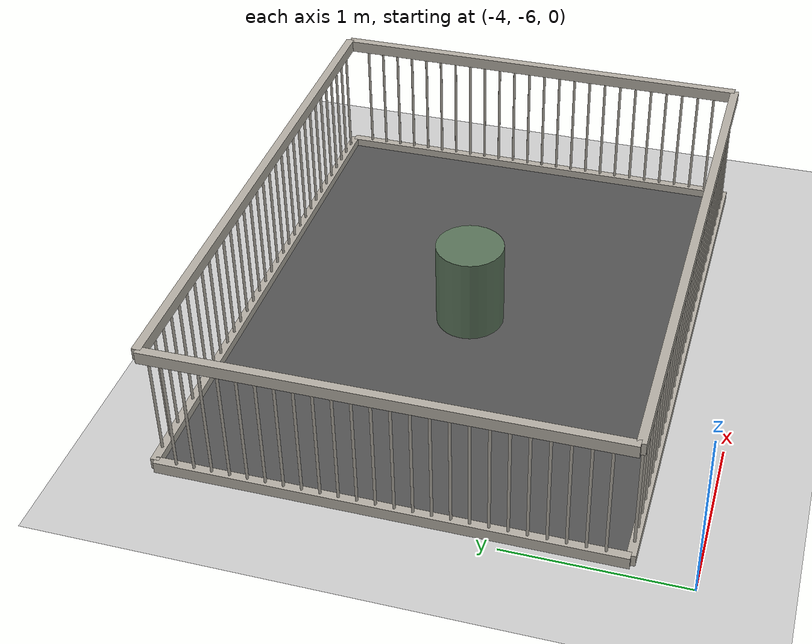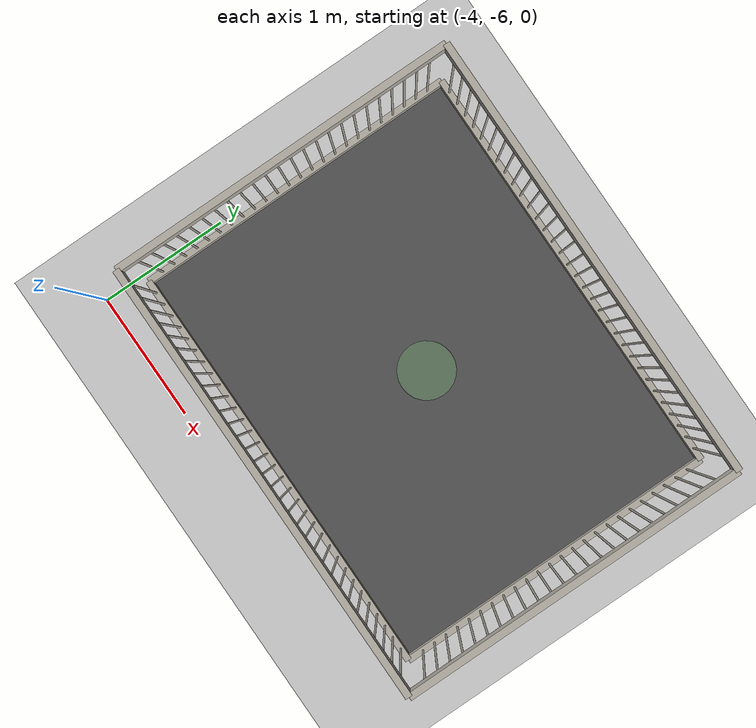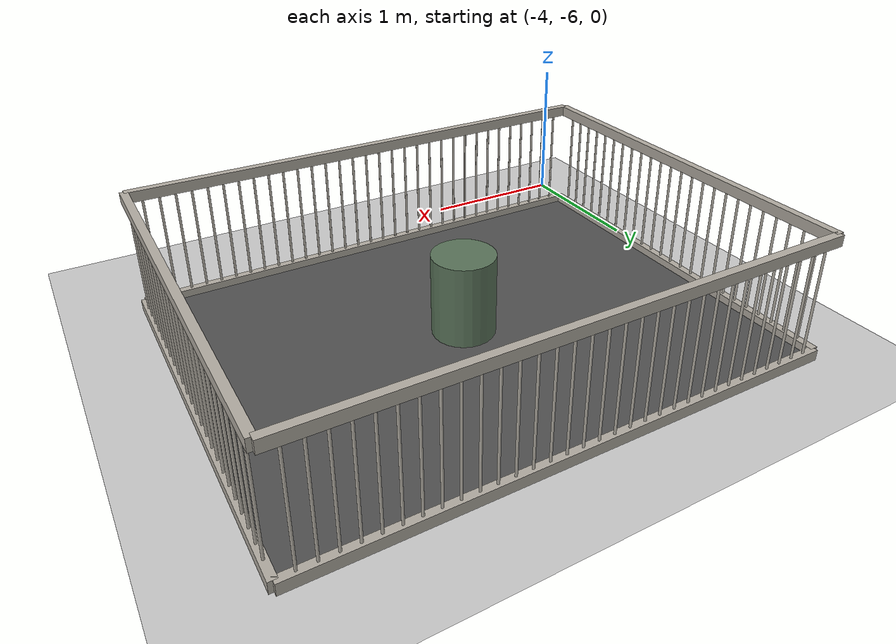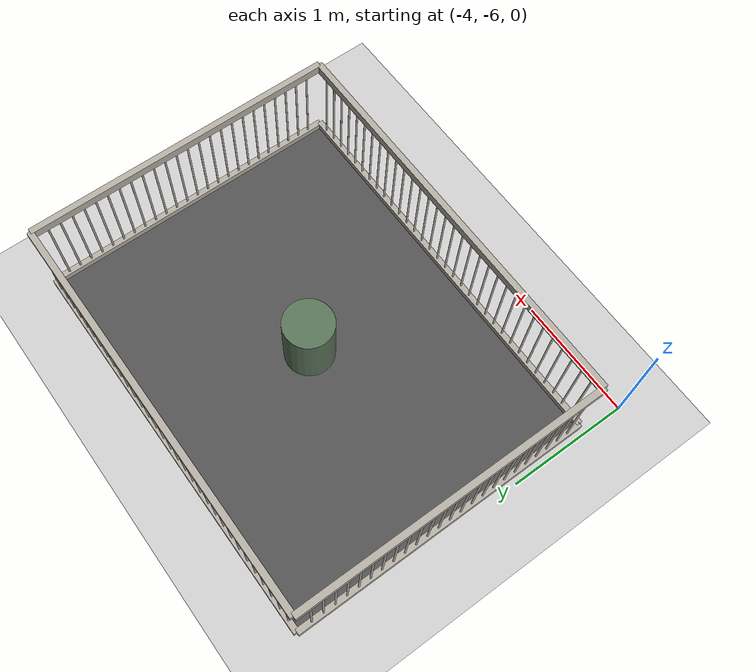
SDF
<sdf version="1.9">
 <world name="pig_pen_16units_world">
  <model name="ground_plane">
   <static>true</static>
   <link name="link">
    <collision name="collision">
     <geometry><plane><normal>0 0 1</normal><size>30 30</size></plane></geometry>
     <surface><friction><ode><mu>1.0</mu><mu2>1.0</mu2></ode></friction></surface>
    </collision>
    <visual name="visual">
     <geometry><plane><normal>0 0 1</normal><size>30 30</size></plane></geometry>
     <material>
      <ambient>0.8 0.8 0.8 1</ambient>
      <diffuse>0.8 0.8 0.8 1</diffuse>
      <specular>0.2 0.2 0.2 1</specular>
     </material>
    </visual>
   </link>
  </model>
  <model name="pen4">
   <pose>-2.275 -4.385 0 0 0 0</pose>
   <static>true</static>
   <link name="floor">
    <pose>0 0 0.01 0 0 0</pose>
    <collision name="collision"><geometry><box><size>3.30 2.55 0.02</size></box></geometry></collision>
    <visual name="visual">
     <geometry><box><size>3.30 2.55 0.02</size></box></geometry>
     <material>
      <ambient>0.25 0.25 0.25 1</ambient>
      <diffuse>0.32 0.32 0.32 1</diffuse>
      <specular>0.05 0.05 0.05 1</specular>
     </material>
    </visual>
   </link>
   <link name="left_wall">
    <pose>0 1.275 0.415 0 0 0</pose>
    <collision name="top_rail_col">
     <pose>0 0 0.38 0 0 0</pose>
     <geometry><box><size>3.30 0.05 0.07</size></box></geometry>
    </collision>
    <visual name="top_rail_vis">
     <pose>0 0 0.38 0 0 0</pose>
     <geometry><box><size>3.30 0.05 0.07</size></box></geometry>
     <material><ambient>0.70 0.68 0.64 1</ambient><diffuse>0.70 0.68 0.64 1</diffuse></material>
    </visual>
    <collision name="bottom_rail_col">
     <pose>0 0 -0.38 0 0 0</pose>
     <geometry><box><size>3.30 0.05 0.07</size></box></geometry>
    </collision>
    <visual name="bottom_rail_vis">
     <pose>0 0 -0.38 0 0 0</pose>
     <geometry><box><size>3.30 0.05 0.07</size></box></geometry>
     <material><ambient>0.70 0.68 0.64 1</ambient><diffuse>0.70 0.68 0.64 1</diffuse></material>
    </visual>
    <collision name="bar_01_col">
     <pose>-1.55 0 0 0 0 0</pose>
     <geometry><cylinder><radius>0.0075</radius><length>0.69</length></cylinder></geometry>
    </collision>
    <visual name="bar_01_vis">
     <pose>-1.55 0 0 0 0 0</pose>
     <geometry><cylinder><radius>0.0075</radius><length>0.69</length></cylinder></geometry>
     <material><ambient>0.70 0.68 0.64 1</ambient><diffuse>0.70 0.68 0.64 1</diffuse></material>
    </visual>
    <collision name="bar_02_col">
     <pose>-1.45 0 0 0 0 0</pose>
     <geometry><cylinder><radius>0.0075</radius><length>0.69</length></cylinder></geometry>
    </collision>
    <visual name="bar_02_vis">
     <pose>-1.45 0 0 0 0 0</pose>
     <geometry><cylinder><radius>0.0075</radius><length>0.69</length></cylinder></geometry>
     <material><ambient>0.70 0.68 0.64 1</ambient><diffuse>0.70 0.68 0.64 1</diffuse></material>
    </visual>
    <collision name="bar_03_col">
     <pose>-1.35 0 0 0 0 0</pose>
     <geometry><cylinder><radius>0.0075</radius><length>0.69</length></cylinder></geometry>
    </collision>
    <visual name="bar_03_vis">
     <pose>-1.35 0 0 0 0 0</pose>
     <geometry><cylinder><radius>0.0075</radius><length>0.69</length></cylinder></geometry>
     <material><ambient>0.70 0.68 0.64 1</ambient><diffuse>0.70 0.68 0.64 1</diffuse></material>
    </visual>
    <collision name="bar_04_col">
     <pose>-1.25 0 0 0 0 0</pose>
     <geometry><cylinder><radius>0.0075</radius><length>0.69</length></cylinder></geometry>
    </collision>
    <visual name="bar_04_vis">
     <pose>-1.25 0 0 0 0 0</pose>
     <geometry><cylinder><radius>0.0075</radius><length>0.69</length></cylinder></geometry>
     <material><ambient>0.70 0.68 0.64 1</ambient><diffuse>0.70 0.68 0.64 1</diffuse></material>
    </visual>
    <collision name="bar_05_col">
     <pose>-1.15 0 0 0 0 0</pose>
     <geometry><cylinder><radius>0.0075</radius><length>0.69</length></cylinder></geometry>
    </collision>
    <visual name="bar_05_vis">
     <pose>-1.15 0 0 0 0 0</pose>
     <geometry><cylinder><radius>0.0075</radius><length>0.69</length></cylinder></geometry>
     <material><ambient>0.70 0.68 0.64 1</ambient><diffuse>0.70 0.68 0.64 1</diffuse></material>
    </visual>
    <collision name="bar_06_col">
     <pose>-1.05 0 0 0 0 0</pose>
     <geometry><cylinder><radius>0.0075</radius><length>0.69</length></cylinder></geometry>
    </collision>
    <visual name="bar_06_vis">
     <pose>-1.05 0 0 0 0 0</pose>
     <geometry><cylinder><radius>0.0075</radius><length>0.69</length></cylinder></geometry>
     <material><ambient>0.70 0.68 0.64 1</ambient><diffuse>0.70 0.68 0.64 1</diffuse></material>
    </visual>
    <collision name="bar_07_col">
     <pose>-0.95 0 0 0 0 0</pose>
     <geometry><cylinder><radius>0.0075</radius><length>0.69</length></cylinder></geometry>
    </collision>
    <visual name="bar_07_vis">
     <pose>-0.95 0 0 0 0 0</pose>
     <geometry><cylinder><radius>0.0075</radius><length>0.69</length></cylinder></geometry>
     <material><ambient>0.70 0.68 0.64 1</ambient><diffuse>0.70 0.68 0.64 1</diffuse></material>
    </visual>
    <collision name="bar_08_col">
     <pose>-0.85 0 0 0 0 0</pose>
     <geometry><cylinder><radius>0.0075</radius><length>0.69</length></cylinder></geometry>
    </collision>
    <visual name="bar_08_vis">
     <pose>-0.85 0 0 0 0 0</pose>
     <geometry><cylinder><radius>0.0075</radius><length>0.69</length></cylinder></geometry>
     <material><ambient>0.70 0.68 0.64 1</ambient><diffuse>0.70 0.68 0.64 1</diffuse></material>
    </visual>
    <collision name="bar_09_col">
     <pose>-0.75 0 0 0 0 0</pose>
     <geometry><cylinder><radius>0.0075</radius><length>0.69</length></cylinder></geometry>
    </collision>
    <visual name="bar_09_vis">
     <pose>-0.75 0 0 0 0 0</pose>
     <geometry><cylinder><radius>0.0075</radius><length>0.69</length></cylinder></geometry>
     <material><ambient>0.70 0.68 0.64 1</ambient><diffuse>0.70 0.68 0.64 1</diffuse></material>
    </visual>
    <collision name="bar_10_col">
     <pose>-0.65 0 0 0 0 0</pose>
     <geometry><cylinder><radius>0.0075</radius><length>0.69</length></cylinder></geometry>
    </collision>
    <visual name="bar_10_vis">
     <pose>-0.65 0 0 0 0 0</pose>
     <geometry><cylinder><radius>0.0075</radius><length>0.69</length></cylinder></geometry>
     <material><ambient>0.70 0.68 0.64 1</ambient><diffuse>0.70 0.68 0.64 1</diffuse></material>
    </visual>
    <collision name="bar_11_col">
     <pose>-0.55 0 0 0 0 0</pose>
     <geometry><cylinder><radius>0.0075</radius><length>0.69</length></cylinder></geometry>
    </collision>
    <visual name="bar_11_vis">
     <pose>-0.55 0 0 0 0 0</pose>
     <geometry><cylinder><radius>0.0075</radius><length>0.69</length></cylinder></geometry>
     <material><ambient>0.70 0.68 0.64 1</ambient><diffuse>0.70 0.68 0.64 1</diffuse></material>
    </visual>
    <collision name="bar_12_col">
     <pose>-0.45 0 0 0 0 0</pose>
     <geometry><cylinder><radius>0.0075</radius><length>0.69</length></cylinder></geometry>
    </collision>
    <visual name="bar_12_vis">
     <pose>-0.45 0 0 0 0 0</pose>
     <geometry><cylinder><radius>0.0075</radius><length>0.69</length></cylinder></geometry>
     <material><ambient>0.70 0.68 0.64 1</ambient><diffuse>0.70 0.68 0.64 1</diffuse></material>
    </visual>
    <collision name="bar_13_col">
     <pose>-0.35 0 0 0 0 0</pose>
     <geometry><cylinder><radius>0.0075</radius><length>0.69</length></cylinder></geometry>
    </collision>
    <visual name="bar_13_vis">
     <pose>-0.35 0 0 0 0 0</pose>
     <geometry><cylinder><radius>0.0075</radius><length>0.69</length></cylinder></geometry>
     <material><ambient>0.70 0.68 0.64 1</ambient><diffuse>0.70 0.68 0.64 1</diffuse></material>
    </visual>
    <collision name="bar_14_col">
     <pose>-0.25 0 0 0 0 0</pose>
     <geometry><cylinder><radius>0.0075</radius><length>0.69</length></cylinder></geometry>
    </collision>
    <visual name="bar_14_vis">
     <pose>-0.25 0 0 0 0 0</pose>
     <geometry><cylinder><radius>0.0075</radius><length>0.69</length></cylinder></geometry>
     <material><ambient>0.70 0.68 0.64 1</ambient><diffuse>0.70 0.68 0.64 1</diffuse></material>
    </visual>
    <collision name="bar_15_col">
     <pose>-0.15 0 0 0 0 0</pose>
     <geometry><cylinder><radius>0.0075</radius><length>0.69</length></cylinder></geometry>
    </collision>
    <visual name="bar_15_vis">
     <pose>-0.15 0 0 0 0 0</pose>
     <geometry><cylinder><radius>0.0075</radius><length>0.69</length></cylinder></geometry>
     <material><ambient>0.70 0.68 0.64 1</ambient><diffuse>0.70 0.68 0.64 1</diffuse></material>
    </visual>
    <collision name="bar_16_col">
     <pose>-0.05 0 0 0 0 0</pose>
     <geometry><cylinder><radius>0.0075</radius><length>0.69</length></cylinder></geometry>
    </collision>
    <visual name="bar_16_vis">
     <pose>-0.05 0 0 0 0 0</pose>
     <geometry><cylinder><radius>0.0075</radius><length>0.69</length></cylinder></geometry>
     <material><ambient>0.70 0.68 0.64 1</ambient><diffuse>0.70 0.68 0.64 1</diffuse></material>
    </visual>
    <collision name="bar_17_col">
     <pose>0.05 0 0 0 0 0</pose>
     <geometry><cylinder><radius>0.0075</radius><length>0.69</length></cylinder></geometry>
    </collision>
    <visual name="bar_17_vis">
     <pose>0.05 0 0 0 0 0</pose>
     <geometry><cylinder><radius>0.0075</radius><length>0.69</length></cylinder></geometry>
     <material><ambient>0.70 0.68 0.64 1</ambient><diffuse>0.70 0.68 0.64 1</diffuse></material>
    </visual>
    <collision name="bar_18_col">
     <pose>0.15 0 0 0 0 0</pose>
     <geometry><cylinder><radius>0.0075</radius><length>0.69</length></cylinder></geometry>
    </collision>
    <visual name="bar_18_vis">
     <pose>0.15 0 0 0 0 0</pose>
     <geometry><cylinder><radius>0.0075</radius><length>0.69</length></cylinder></geometry>
     <material><ambient>0.70 0.68 0.64 1</ambient><diffuse>0.70 0.68 0.64 1</diffuse></material>
    </visual>
    <collision name="bar_19_col">
     <pose>0.25 0 0 0 0 0</pose>
     <geometry><cylinder><radius>0.0075</radius><length>0.69</length></cylinder></geometry>
    </collision>
    <visual name="bar_19_vis">
     <pose>0.25 0 0 0 0 0</pose>
     <geometry><cylinder><radius>0.0075</radius><length>0.69</length></cylinder></geometry>
     <material><ambient>0.70 0.68 0.64 1</ambient><diffuse>0.70 0.68 0.64 1</diffuse></material>
    </visual>
    <collision name="bar_20_col">
     <pose>0.35 0 0 0 0 0</pose>
     <geometry><cylinder><radius>0.0075</radius><length>0.69</length></cylinder></geometry>
    </collision>
    <visual name="bar_20_vis">
     <pose>0.35 0 0 0 0 0</pose>
     <geometry><cylinder><radius>0.0075</radius><length>0.69</length></cylinder></geometry>
     <material><ambient>0.70 0.68 0.64 1</ambient><diffuse>0.70 0.68 0.64 1</diffuse></material>
    </visual>
    <collision name="bar_21_col">
     <pose>0.45 0 0 0 0 0</pose>
     <geometry><cylinder><radius>0.0075</radius><length>0.69</length></cylinder></geometry>
    </collision>
    <visual name="bar_21_vis">
     <pose>0.45 0 0 0 0 0</pose>
     <geometry><cylinder><radius>0.0075</radius><length>0.69</length></cylinder></geometry>
     <material><ambient>0.70 0.68 0.64 1</ambient><diffuse>0.70 0.68 0.64 1</diffuse></material>
    </visual>
    <collision name="bar_22_col">
     <pose>0.55 0 0 0 0 0</pose>
     <geometry><cylinder><radius>0.0075</radius><length>0.69</length></cylinder></geometry>
    </collision>
    <visual name="bar_22_vis">
     <pose>0.55 0 0 0 0 0</pose>
     <geometry><cylinder><radius>0.0075</radius><length>0.69</length></cylinder></geometry>
     <material><ambient>0.70 0.68 0.64 1</ambient><diffuse>0.70 0.68 0.64 1</diffuse></material>
    </visual>
    <collision name="bar_23_col">
     <pose>0.65 0 0 0 0 0</pose>
     <geometry><cylinder><radius>0.0075</radius><length>0.69</length></cylinder></geometry>
    </collision>
    <visual name="bar_23_vis">
     <pose>0.65 0 0 0 0 0</pose>
     <geometry><cylinder><radius>0.0075</radius><length>0.69</length></cylinder></geometry>
     <material><ambient>0.70 0.68 0.64 1</ambient><diffuse>0.70 0.68 0.64 1</diffuse></material>
    </visual>
    <collision name="bar_24_col">
     <pose>0.75 0 0 0 0 0</pose>
     <geometry><cylinder><radius>0.0075</radius><length>0.69</length></cylinder></geometry>
    </collision>
    <visual name="bar_24_vis">
     <pose>0.75 0 0 0 0 0</pose>
     <geometry><cylinder><radius>0.0075</radius><length>0.69</length></cylinder></geometry>
     <material><ambient>0.70 0.68 0.64 1</ambient><diffuse>0.70 0.68 0.64 1</diffuse></material>
    </visual>
    <collision name="bar_25_col">
     <pose>0.85 0 0 0 0 0</pose>
     <geometry><cylinder><radius>0.0075</radius><length>0.69</length></cylinder></geometry>
    </collision>
    <visual name="bar_25_vis">
     <pose>0.85 0 0 0 0 0</pose>
     <geometry><cylinder><radius>0.0075</radius><length>0.69</length></cylinder></geometry>
     <material><ambient>0.70 0.68 0.64 1</ambient><diffuse>0.70 0.68 0.64 1</diffuse></material>
    </visual>
    <collision name="bar_26_col">
     <pose>0.95 0 0 0 0 0</pose>
     <geometry><cylinder><radius>0.0075</radius><length>0.69</length></cylinder></geometry>
    </collision>
    <visual name="bar_26_vis">
     <pose>0.95 0 0 0 0 0</pose>
     <geometry><cylinder><radius>0.0075</radius><length>0.69</length></cylinder></geometry>
     <material><ambient>0.70 0.68 0.64 1</ambient><diffuse>0.70 0.68 0.64 1</diffuse></material>
    </visual>
    <collision name="bar_27_col">
     <pose>1.05 0 0 0 0 0</pose>
     <geometry><cylinder><radius>0.0075</radius><length>0.69</length></cylinder></geometry>
    </collision>
    <visual name="bar_27_vis">
     <pose>1.05 0 0 0 0 0</pose>
     <geometry><cylinder><radius>0.0075</radius><length>0.69</length></cylinder></geometry>
     <material><ambient>0.70 0.68 0.64 1</ambient><diffuse>0.70 0.68 0.64 1</diffuse></material>
    </visual>
    <collision name="bar_28_col">
     <pose>1.15 0 0 0 0 0</pose>
     <geometry><cylinder><radius>0.0075</radius><length>0.69</length></cylinder></geometry>
    </collision>
    <visual name="bar_28_vis">
     <pose>1.15 0 0 0 0 0</pose>
     <geometry><cylinder><radius>0.0075</radius><length>0.69</length></cylinder></geometry>
     <material><ambient>0.70 0.68 0.64 1</ambient><diffuse>0.70 0.68 0.64 1</diffuse></material>
    </visual>
    <collision name="bar_29_col">
     <pose>1.25 0 0 0 0 0</pose>
     <geometry><cylinder><radius>0.0075</radius><length>0.69</length></cylinder></geometry>
    </collision>
    <visual name="bar_29_vis">
     <pose>1.25 0 0 0 0 0</pose>
     <geometry><cylinder><radius>0.0075</radius><length>0.69</length></cylinder></geometry>
     <material><ambient>0.70 0.68 0.64 1</ambient><diffuse>0.70 0.68 0.64 1</diffuse></material>
    </visual>
    <collision name="bar_30_col">
     <pose>1.35 0 0 0 0 0</pose>
     <geometry><cylinder><radius>0.0075</radius><length>0.69</length></cylinder></geometry>
    </collision>
    <visual name="bar_30_vis">
     <pose>1.35 0 0 0 0 0</pose>
     <geometry><cylinder><radius>0.0075</radius><length>0.69</length></cylinder></geometry>
     <material><ambient>0.70 0.68 0.64 1</ambient><diffuse>0.70 0.68 0.64 1</diffuse></material>
    </visual>
    <collision name="bar_31_col">
     <pose>1.45 0 0 0 0 0</pose>
     <geometry><cylinder><radius>0.0075</radius><length>0.69</length></cylinder></geometry>
    </collision>
    <visual name="bar_31_vis">
     <pose>1.45 0 0 0 0 0</pose>
     <geometry><cylinder><radius>0.0075</radius><length>0.69</length></cylinder></geometry>
     <material><ambient>0.70 0.68 0.64 1</ambient><diffuse>0.70 0.68 0.64 1</diffuse></material>
    </visual>
    <collision name="bar_32_col">
     <pose>1.55 0 0 0 0 0</pose>
     <geometry><cylinder><radius>0.0075</radius><length>0.69</length></cylinder></geometry>
    </collision>
    <visual name="bar_32_vis">
     <pose>1.55 0 0 0 0 0</pose>
     <geometry><cylinder><radius>0.0075</radius><length>0.69</length></cylinder></geometry>
     <material><ambient>0.70 0.68 0.64 1</ambient><diffuse>0.70 0.68 0.64 1</diffuse></material>
    </visual>
   </link>
   <link name="right_wall">
    <pose>0 -1.275 0.415 0 0 0</pose>
    <collision name="top_rail_col">
     <pose>0 0 0.38 0 0 0</pose>
     <geometry><box><size>3.30 0.05 0.07</size></box></geometry>
    </collision>
    <visual name="top_rail_vis">
     <pose>0 0 0.38 0 0 0</pose>
     <geometry><box><size>3.30 0.05 0.07</size></box></geometry>
     <material><ambient>0.70 0.68 0.64 1</ambient><diffuse>0.70 0.68 0.64 1</diffuse></material>
    </visual>
    <collision name="bottom_rail_col">
     <pose>0 0 -0.38 0 0 0</pose>
     <geometry><box><size>3.30 0.05 0.07</size></box></geometry>
    </collision>
    <visual name="bottom_rail_vis">
     <pose>0 0 -0.38 0 0 0</pose>
     <geometry><box><size>3.30 0.05 0.07</size></box></geometry>
     <material><ambient>0.70 0.68 0.64 1</ambient><diffuse>0.70 0.68 0.64 1</diffuse></material>
    </visual>
    <collision name="bar_01_col">
     <pose>-1.55 0 0 0 0 0</pose>
     <geometry><cylinder><radius>0.0075</radius><length>0.69</length></cylinder></geometry>
    </collision>
    <visual name="bar_01_vis">
     <pose>-1.55 0 0 0 0 0</pose>
     <geometry><cylinder><radius>0.0075</radius><length>0.69</length></cylinder></geometry>
     <material><ambient>0.70 0.68 0.64 1</ambient><diffuse>0.70 0.68 0.64 1</diffuse></material>
    </visual>
    <collision name="bar_02_col">
     <pose>-1.45 0 0 0 0 0</pose>
     <geometry><cylinder><radius>0.0075</radius><length>0.69</length></cylinder></geometry>
    </collision>
    <visual name="bar_02_vis">
     <pose>-1.45 0 0 0 0 0</pose>
     <geometry><cylinder><radius>0.0075</radius><length>0.69</length></cylinder></geometry>
     <material><ambient>0.70 0.68 0.64 1</ambient><diffuse>0.70 0.68 0.64 1</diffuse></material>
    </visual>
    <collision name="bar_03_col">
     <pose>-1.35 0 0 0 0 0</pose>
     <geometry><cylinder><radius>0.0075</radius><length>0.69</length></cylinder></geometry>
    </collision>
    <visual name="bar_03_vis">
     <pose>-1.35 0 0 0 0 0</pose>
     <geometry><cylinder><radius>0.0075</radius><length>0.69</length></cylinder></geometry>
     <material><ambient>0.70 0.68 0.64 1</ambient><diffuse>0.70 0.68 0.64 1</diffuse></material>
    </visual>
    <collision name="bar_04_col">
     <pose>-1.25 0 0 0 0 0</pose>
     <geometry><cylinder><radius>0.0075</radius><length>0.69</length></cylinder></geometry>
    </collision>
    <visual name="bar_04_vis">
     <pose>-1.25 0 0 0 0 0</pose>
     <geometry><cylinder><radius>0.0075</radius><length>0.69</length></cylinder></geometry>
     <material><ambient>0.70 0.68 0.64 1</ambient><diffuse>0.70 0.68 0.64 1</diffuse></material>
    </visual>
    <collision name="bar_05_col">
     <pose>-1.15 0 0 0 0 0</pose>
     <geometry><cylinder><radius>0.0075</radius><length>0.69</length></cylinder></geometry>
    </collision>
    <visual name="bar_05_vis">
     <pose>-1.15 0 0 0 0 0</pose>
     <geometry><cylinder><radius>0.0075</radius><length>0.69</length></cylinder></geometry>
     <material><ambient>0.70 0.68 0.64 1</ambient><diffuse>0.70 0.68 0.64 1</diffuse></material>
    </visual>
    <collision name="bar_06_col">
     <pose>-1.05 0 0 0 0 0</pose>
     <geometry><cylinder><radius>0.0075</radius><length>0.69</length></cylinder></geometry>
    </collision>
    <visual name="bar_06_vis">
     <pose>-1.05 0 0 0 0 0</pose>
     <geometry><cylinder><radius>0.0075</radius><length>0.69</length></cylinder></geometry>
     <material><ambient>0.70 0.68 0.64 1</ambient><diffuse>0.70 0.68 0.64 1</diffuse></material>
    </visual>
    <collision name="bar_07_col">
     <pose>-0.95 0 0 0 0 0</pose>
     <geometry><cylinder><radius>0.0075</radius><length>0.69</length></cylinder></geometry>
    </collision>
    <visual name="bar_07_vis">
     <pose>-0.95 0 0 0 0 0</pose>
     <geometry><cylinder><radius>0.0075</radius><length>0.69</length></cylinder></geometry>
     <material><ambient>0.70 0.68 0.64 1</ambient><diffuse>0.70 0.68 0.64 1</diffuse></material>
    </visual>
    <collision name="bar_08_col">
     <pose>-0.85 0 0 0 0 0</pose>
     <geometry><cylinder><radius>0.0075</radius><length>0.69</length></cylinder></geometry>
    </collision>
    <visual name="bar_08_vis">
     <pose>-0.85 0 0 0 0 0</pose>
     <geometry><cylinder><radius>0.0075</radius><length>0.69</length></cylinder></geometry>
     <material><ambient>0.70 0.68 0.64 1</ambient><diffuse>0.70 0.68 0.64 1</diffuse></material>
    </visual>
    <collision name="bar_09_col">
     <pose>-0.75 0 0 0 0 0</pose>
     <geometry><cylinder><radius>0.0075</radius><length>0.69</length></cylinder></geometry>
    </collision>
    <visual name="bar_09_vis">
     <pose>-0.75 0 0 0 0 0</pose>
     <geometry><cylinder><radius>0.0075</radius><length>0.69</length></cylinder></geometry>
     <material><ambient>0.70 0.68 0.64 1</ambient><diffuse>0.70 0.68 0.64 1</diffuse></material>
    </visual>
    <collision name="bar_10_col">
     <pose>-0.65 0 0 0 0 0</pose>
     <geometry><cylinder><radius>0.0075</radius><length>0.69</length></cylinder></geometry>
    </collision>
    <visual name="bar_10_vis">
     <pose>-0.65 0 0 0 0 0</pose>
     <geometry><cylinder><radius>0.0075</radius><length>0.69</length></cylinder></geometry>
     <material><ambient>0.70 0.68 0.64 1</ambient><diffuse>0.70 0.68 0.64 1</diffuse></material>
    </visual>
    <collision name="bar_11_col">
     <pose>-0.55 0 0 0 0 0</pose>
     <geometry><cylinder><radius>0.0075</radius><length>0.69</length></cylinder></geometry>
    </collision>
    <visual name="bar_11_vis">
     <pose>-0.55 0 0 0 0 0</pose>
     <geometry><cylinder><radius>0.0075</radius><length>0.69</length></cylinder></geometry>
     <material><ambient>0.70 0.68 0.64 1</ambient><diffuse>0.70 0.68 0.64 1</diffuse></material>
    </visual>
    <collision name="bar_12_col">
     <pose>-0.45 0 0 0 0 0</pose>
     <geometry><cylinder><radius>0.0075</radius><length>0.69</length></cylinder></geometry>
    </collision>
    <visual name="bar_12_vis">
     <pose>-0.45 0 0 0 0 0</pose>
     <geometry><cylinder><radius>0.0075</radius><length>0.69</length></cylinder></geometry>
     <material><ambient>0.70 0.68 0.64 1</ambient><diffuse>0.70 0.68 0.64 1</diffuse></material>
    </visual>
    <collision name="bar_13_col">
     <pose>-0.35 0 0 0 0 0</pose>
     <geometry><cylinder><radius>0.0075</radius><length>0.69</length></cylinder></geometry>
    </collision>
    <visual name="bar_13_vis">
     <pose>-0.35 0 0 0 0 0</pose>
     <geometry><cylinder><radius>0.0075</radius><length>0.69</length></cylinder></geometry>
     <material><ambient>0.70 0.68 0.64 1</ambient><diffuse>0.70 0.68 0.64 1</diffuse></material>
    </visual>
    <collision name="bar_14_col">
     <pose>-0.25 0 0 0 0 0</pose>
     <geometry><cylinder><radius>0.0075</radius><length>0.69</length></cylinder></geometry>
    </collision>
    <visual name="bar_14_vis">
     <pose>-0.25 0 0 0 0 0</pose>
     <geometry><cylinder><radius>0.0075</radius><length>0.69</length></cylinder></geometry>
     <material><ambient>0.70 0.68 0.64 1</ambient><diffuse>0.70 0.68 0.64 1</diffuse></material>
    </visual>
    <collision name="bar_15_col">
     <pose>-0.15 0 0 0 0 0</pose>
     <geometry><cylinder><radius>0.0075</radius><length>0.69</length></cylinder></geometry>
    </collision>
    <visual name="bar_15_vis">
     <pose>-0.15 0 0 0 0 0</pose>
     <geometry><cylinder><radius>0.0075</radius><length>0.69</length></cylinder></geometry>
     <material><ambient>0.70 0.68 0.64 1</ambient><diffuse>0.70 0.68 0.64 1</diffuse></material>
    </visual>
    <collision name="bar_16_col">
     <pose>-0.05 0 0 0 0 0</pose>
     <geometry><cylinder><radius>0.0075</radius><length>0.69</length></cylinder></geometry>
    </collision>
    <visual name="bar_16_vis">
     <pose>-0.05 0 0 0 0 0</pose>
     <geometry><cylinder><radius>0.0075</radius><length>0.69</length></cylinder></geometry>
     <material><ambient>0.70 0.68 0.64 1</ambient><diffuse>0.70 0.68 0.64 1</diffuse></material>
    </visual>
    <collision name="bar_17_col">
     <pose>0.05 0 0 0 0 0</pose>
     <geometry><cylinder><radius>0.0075</radius><length>0.69</length></cylinder></geometry>
    </collision>
    <visual name="bar_17_vis">
     <pose>0.05 0 0 0 0 0</pose>
     <geometry><cylinder><radius>0.0075</radius><length>0.69</length></cylinder></geometry>
     <material><ambient>0.70 0.68 0.64 1</ambient><diffuse>0.70 0.68 0.64 1</diffuse></material>
    </visual>
    <collision name="bar_18_col">
     <pose>0.15 0 0 0 0 0</pose>
     <geometry><cylinder><radius>0.0075</radius><length>0.69</length></cylinder></geometry>
    </collision>
    <visual name="bar_18_vis">
     <pose>0.15 0 0 0 0 0</pose>
     <geometry><cylinder><radius>0.0075</radius><length>0.69</length></cylinder></geometry>
     <material><ambient>0.70 0.68 0.64 1</ambient><diffuse>0.70 0.68 0.64 1</diffuse></material>
    </visual>
    <collision name="bar_19_col">
     <pose>0.25 0 0 0 0 0</pose>
     <geometry><cylinder><radius>0.0075</radius><length>0.69</length></cylinder></geometry>
    </collision>
    <visual name="bar_19_vis">
     <pose>0.25 0 0 0 0 0</pose>
     <geometry><cylinder><radius>0.0075</radius><length>0.69</length></cylinder></geometry>
     <material><ambient>0.70 0.68 0.64 1</ambient><diffuse>0.70 0.68 0.64 1</diffuse></material>
    </visual>
    <collision name="bar_20_col">
     <pose>0.35 0 0 0 0 0</pose>
     <geometry><cylinder><radius>0.0075</radius><length>0.69</length></cylinder></geometry>
    </collision>
    <visual name="bar_20_vis">
     <pose>0.35 0 0 0 0 0</pose>
     <geometry><cylinder><radius>0.0075</radius><length>0.69</length></cylinder></geometry>
     <material><ambient>0.70 0.68 0.64 1</ambient><diffuse>0.70 0.68 0.64 1</diffuse></material>
    </visual>
    <collision name="bar_21_col">
     <pose>0.45 0 0 0 0 0</pose>
     <geometry><cylinder><radius>0.0075</radius><length>0.69</length></cylinder></geometry>
    </collision>
    <visual name="bar_21_vis">
     <pose>0.45 0 0 0 0 0</pose>
     <geometry><cylinder><radius>0.0075</radius><length>0.69</length></cylinder></geometry>
     <material><ambient>0.70 0.68 0.64 1</ambient><diffuse>0.70 0.68 0.64 1</diffuse></material>
    </visual>
    <collision name="bar_22_col">
     <pose>0.55 0 0 0 0 0</pose>
     <geometry><cylinder><radius>0.0075</radius><length>0.69</length></cylinder></geometry>
    </collision>
    <visual name="bar_22_vis">
     <pose>0.55 0 0 0 0 0</pose>
     <geometry><cylinder><radius>0.0075</radius><length>0.69</length></cylinder></geometry>
     <material><ambient>0.70 0.68 0.64 1</ambient><diffuse>0.70 0.68 0.64 1</diffuse></material>
    </visual>
    <collision name="bar_23_col">
     <pose>0.65 0 0 0 0 0</pose>
     <geometry><cylinder><radius>0.0075</radius><length>0.69</length></cylinder></geometry>
    </collision>
    <visual name="bar_23_vis">
     <pose>0.65 0 0 0 0 0</pose>
     <geometry><cylinder><radius>0.0075</radius><length>0.69</length></cylinder></geometry>
     <material><ambient>0.70 0.68 0.64 1</ambient><diffuse>0.70 0.68 0.64 1</diffuse></material>
    </visual>
    <collision name="bar_24_col">
     <pose>0.75 0 0 0 0 0</pose>
     <geometry><cylinder><radius>0.0075</radius><length>0.69</length></cylinder></geometry>
    </collision>
    <visual name="bar_24_vis">
     <pose>0.75 0 0 0 0 0</pose>
     <geometry><cylinder><radius>0.0075</radius><length>0.69</length></cylinder></geometry>
     <material><ambient>0.70 0.68 0.64 1</ambient><diffuse>0.70 0.68 0.64 1</diffuse></material>
    </visual>
    <collision name="bar_25_col">
     <pose>0.85 0 0 0 0 0</pose>
     <geometry><cylinder><radius>0.0075</radius><length>0.69</length></cylinder></geometry>
    </collision>
    <visual name="bar_25_vis">
     <pose>0.85 0 0 0 0 0</pose>
     <geometry><cylinder><radius>0.0075</radius><length>0.69</length></cylinder></geometry>
     <material><ambient>0.70 0.68 0.64 1</ambient><diffuse>0.70 0.68 0.64 1</diffuse></material>
    </visual>
    <collision name="bar_26_col">
     <pose>0.95 0 0 0 0 0</pose>
     <geometry><cylinder><radius>0.0075</radius><length>0.69</length></cylinder></geometry>
    </collision>
    <visual name="bar_26_vis">
     <pose>0.95 0 0 0 0 0</pose>
     <geometry><cylinder><radius>0.0075</radius><length>0.69</length></cylinder></geometry>
     <material><ambient>0.70 0.68 0.64 1</ambient><diffuse>0.70 0.68 0.64 1</diffuse></material>
    </visual>
    <collision name="bar_27_col">
     <pose>1.05 0 0 0 0 0</pose>
     <geometry><cylinder><radius>0.0075</radius><length>0.69</length></cylinder></geometry>
    </collision>
    <visual name="bar_27_vis">
     <pose>1.05 0 0 0 0 0</pose>
     <geometry><cylinder><radius>0.0075</radius><length>0.69</length></cylinder></geometry>
     <material><ambient>0.70 0.68 0.64 1</ambient><diffuse>0.70 0.68 0.64 1</diffuse></material>
    </visual>
    <collision name="bar_28_col">
     <pose>1.15 0 0 0 0 0</pose>
     <geometry><cylinder><radius>0.0075</radius><length>0.69</length></cylinder></geometry>
    </collision>
    <visual name="bar_28_vis">
     <pose>1.15 0 0 0 0 0</pose>
     <geometry><cylinder><radius>0.0075</radius><length>0.69</length></cylinder></geometry>
     <material><ambient>0.70 0.68 0.64 1</ambient><diffuse>0.70 0.68 0.64 1</diffuse></material>
    </visual>
    <collision name="bar_29_col">
     <pose>1.25 0 0 0 0 0</pose>
     <geometry><cylinder><radius>0.0075</radius><length>0.69</length></cylinder></geometry>
    </collision>
    <visual name="bar_29_vis">
     <pose>1.25 0 0 0 0 0</pose>
     <geometry><cylinder><radius>0.0075</radius><length>0.69</length></cylinder></geometry>
     <material><ambient>0.70 0.68 0.64 1</ambient><diffuse>0.70 0.68 0.64 1</diffuse></material>
    </visual>
    <collision name="bar_30_col">
     <pose>1.35 0 0 0 0 0</pose>
     <geometry><cylinder><radius>0.0075</radius><length>0.69</length></cylinder></geometry>
    </collision>
    <visual name="bar_30_vis">
     <pose>1.35 0 0 0 0 0</pose>
     <geometry><cylinder><radius>0.0075</radius><length>0.69</length></cylinder></geometry>
     <material><ambient>0.70 0.68 0.64 1</ambient><diffuse>0.70 0.68 0.64 1</diffuse></material>
    </visual>
    <collision name="bar_31_col">
     <pose>1.45 0 0 0 0 0</pose>
     <geometry><cylinder><radius>0.0075</radius><length>0.69</length></cylinder></geometry>
    </collision>
    <visual name="bar_31_vis">
     <pose>1.45 0 0 0 0 0</pose>
     <geometry><cylinder><radius>0.0075</radius><length>0.69</length></cylinder></geometry>
     <material><ambient>0.70 0.68 0.64 1</ambient><diffuse>0.70 0.68 0.64 1</diffuse></material>
    </visual>
    <collision name="bar_32_col">
     <pose>1.55 0 0 0 0 0</pose>
     <geometry><cylinder><radius>0.0075</radius><length>0.69</length></cylinder></geometry>
    </collision>
    <visual name="bar_32_vis">
     <pose>1.55 0 0 0 0 0</pose>
     <geometry><cylinder><radius>0.0075</radius><length>0.69</length></cylinder></geometry>
     <material><ambient>0.70 0.68 0.64 1</ambient><diffuse>0.70 0.68 0.64 1</diffuse></material>
    </visual>
   </link>
   <link name="back_wall">
    <pose>1.65 0 0.415 0 0 0</pose>
    <collision name="top_rail_col">
     <pose>0 0 0.38 0 0 0</pose>
     <geometry><box><size>0.05 2.55 0.07</size></box></geometry>
    </collision>
    <visual name="top_rail_vis">
     <pose>0 0 0.38 0 0 0</pose>
     <geometry><box><size>0.05 2.55 0.07</size></box></geometry>
     <material><ambient>0.70 0.68 0.64 1</ambient><diffuse>0.70 0.68 0.64 1</diffuse></material>
    </visual>
    <collision name="bottom_rail_col">
     <pose>0 0 -0.38 0 0 0</pose>
     <geometry><box><size>0.05 2.55 0.07</size></box></geometry>
    </collision>
    <visual name="bottom_rail_vis">
     <pose>0 0 -0.38 0 0 0</pose>
     <geometry><box><size>0.05 2.55 0.07</size></box></geometry>
     <material><ambient>0.70 0.68 0.64 1</ambient><diffuse>0.70 0.68 0.64 1</diffuse></material>
    </visual>
    <collision name="bar_01_col">
     <pose>0 -1.15 0 0 0 0</pose>
     <geometry><cylinder><radius>0.0075</radius><length>0.69</length></cylinder></geometry>
    </collision>
    <visual name="bar_01_vis">
     <pose>0 -1.15 0 0 0 0</pose>
     <geometry><cylinder><radius>0.0075</radius><length>0.69</length></cylinder></geometry>
     <material><ambient>0.70 0.68 0.64 1</ambient><diffuse>0.70 0.68 0.64 1</diffuse></material>
    </visual>
    <collision name="bar_02_col">
     <pose>0 -1.05 0 0 0 0</pose>
     <geometry><cylinder><radius>0.0075</radius><length>0.69</length></cylinder></geometry>
    </collision>
    <visual name="bar_02_vis">
     <pose>0 -1.05 0 0 0 0</pose>
     <geometry><cylinder><radius>0.0075</radius><length>0.69</length></cylinder></geometry>
     <material><ambient>0.70 0.68 0.64 1</ambient><diffuse>0.70 0.68 0.64 1</diffuse></material>
    </visual>
    <collision name="bar_03_col">
     <pose>0 -0.95 0 0 0 0</pose>
     <geometry><cylinder><radius>0.0075</radius><length>0.69</length></cylinder></geometry>
    </collision>
    <visual name="bar_03_vis">
     <pose>0 -0.95 0 0 0 0</pose>
     <geometry><cylinder><radius>0.0075</radius><length>0.69</length></cylinder></geometry>
     <material><ambient>0.70 0.68 0.64 1</ambient><diffuse>0.70 0.68 0.64 1</diffuse></material>
    </visual>
    <collision name="bar_04_col">
     <pose>0 -0.85 0 0 0 0</pose>
     <geometry><cylinder><radius>0.0075</radius><length>0.69</length></cylinder></geometry>
    </collision>
    <visual name="bar_04_vis">
     <pose>0 -0.85 0 0 0 0</pose>
     <geometry><cylinder><radius>0.0075</radius><length>0.69</length></cylinder></geometry>
     <material><ambient>0.70 0.68 0.64 1</ambient><diffuse>0.70 0.68 0.64 1</diffuse></material>
    </visual>
    <collision name="bar_05_col">
     <pose>0 -0.75 0 0 0 0</pose>
     <geometry><cylinder><radius>0.0075</radius><length>0.69</length></cylinder></geometry>
    </collision>
    <visual name="bar_05_vis">
     <pose>0 -0.75 0 0 0 0</pose>
     <geometry><cylinder><radius>0.0075</radius><length>0.69</length></cylinder></geometry>
     <material><ambient>0.70 0.68 0.64 1</ambient><diffuse>0.70 0.68 0.64 1</diffuse></material>
    </visual>
    <collision name="bar_06_col">
     <pose>0 -0.65 0 0 0 0</pose>
     <geometry><cylinder><radius>0.0075</radius><length>0.69</length></cylinder></geometry>
    </collision>
    <visual name="bar_06_vis">
     <pose>0 -0.65 0 0 0 0</pose>
     <geometry><cylinder><radius>0.0075</radius><length>0.69</length></cylinder></geometry>
     <material><ambient>0.70 0.68 0.64 1</ambient><diffuse>0.70 0.68 0.64 1</diffuse></material>
    </visual>
    <collision name="bar_07_col">
     <pose>0 -0.55 0 0 0 0</pose>
     <geometry><cylinder><radius>0.0075</radius><length>0.69</length></cylinder></geometry>
    </collision>
    <visual name="bar_07_vis">
     <pose>0 -0.55 0 0 0 0</pose>
     <geometry><cylinder><radius>0.0075</radius><length>0.69</length></cylinder></geometry>
     <material><ambient>0.70 0.68 0.64 1</ambient><diffuse>0.70 0.68 0.64 1</diffuse></material>
    </visual>
    <collision name="bar_08_col">
     <pose>0 -0.45 0 0 0 0</pose>
     <geometry><cylinder><radius>0.0075</radius><length>0.69</length></cylinder></geometry>
    </collision>
    <visual name="bar_08_vis">
     <pose>0 -0.45 0 0 0 0</pose>
     <geometry><cylinder><radius>0.0075</radius><length>0.69</length></cylinder></geometry>
     <material><ambient>0.70 0.68 0.64 1</ambient><diffuse>0.70 0.68 0.64 1</diffuse></material>
    </visual>
    <collision name="bar_09_col">
     <pose>0 -0.35 0 0 0 0</pose>
     <geometry><cylinder><radius>0.0075</radius><length>0.69</length></cylinder></geometry>
    </collision>
    <visual name="bar_09_vis">
     <pose>0 -0.35 0 0 0 0</pose>
     <geometry><cylinder><radius>0.0075</radius><length>0.69</length></cylinder></geometry>
     <material><ambient>0.70 0.68 0.64 1</ambient><diffuse>0.70 0.68 0.64 1</diffuse></material>
    </visual>
    <collision name="bar_10_col">
     <pose>0 -0.25 0 0 0 0</pose>
     <geometry><cylinder><radius>0.0075</radius><length>0.69</length></cylinder></geometry>
    </collision>
    <visual name="bar_10_vis">
     <pose>0 -0.25 0 0 0 0</pose>
     <geometry><cylinder><radius>0.0075</radius><length>0.69</length></cylinder></geometry>
     <material><ambient>0.70 0.68 0.64 1</ambient><diffuse>0.70 0.68 0.64 1</diffuse></material>
    </visual>
    <collision name="bar_11_col">
     <pose>0 -0.15 0 0 0 0</pose>
     <geometry><cylinder><radius>0.0075</radius><length>0.69</length></cylinder></geometry>
    </collision>
    <visual name="bar_11_vis">
     <pose>0 -0.15 0 0 0 0</pose>
     <geometry><cylinder><radius>0.0075</radius><length>0.69</length></cylinder></geometry>
     <material><ambient>0.70 0.68 0.64 1</ambient><diffuse>0.70 0.68 0.64 1</diffuse></material>
    </visual>
    <collision name="bar_12_col">
     <pose>0 -0.05 0 0 0 0</pose>
     <geometry><cylinder><radius>0.0075</radius><length>0.69</length></cylinder></geometry>
    </collision>
    <visual name="bar_12_vis">
     <pose>0 -0.05 0 0 0 0</pose>
     <geometry><cylinder><radius>0.0075</radius><length>0.69</length></cylinder></geometry>
     <material><ambient>0.70 0.68 0.64 1</ambient><diffuse>0.70 0.68 0.64 1</diffuse></material>
    </visual>
    <collision name="bar_13_col">
     <pose>0 0.05 0 0 0 0</pose>
     <geometry><cylinder><radius>0.0075</radius><length>0.69</length></cylinder></geometry>
    </collision>
    <visual name="bar_13_vis">
     <pose>0 0.05 0 0 0 0</pose>
     <geometry><cylinder><radius>0.0075</radius><length>0.69</length></cylinder></geometry>
     <material><ambient>0.70 0.68 0.64 1</ambient><diffuse>0.70 0.68 0.64 1</diffuse></material>
    </visual>
    <collision name="bar_14_col">
     <pose>0 0.15 0 0 0 0</pose>
     <geometry><cylinder><radius>0.0075</radius><length>0.69</length></cylinder></geometry>
    </collision>
    <visual name="bar_14_vis">
     <pose>0 0.15 0 0 0 0</pose>
     <geometry><cylinder><radius>0.0075</radius><length>0.69</length></cylinder></geometry>
     <material><ambient>0.70 0.68 0.64 1</ambient><diffuse>0.70 0.68 0.64 1</diffuse></material>
    </visual>
    <collision name="bar_15_col">
     <pose>0 0.25 0 0 0 0</pose>
     <geometry><cylinder><radius>0.0075</radius><length>0.69</length></cylinder></geometry>
    </collision>
    <visual name="bar_15_vis">
     <pose>0 0.25 0 0 0 0</pose>
     <geometry><cylinder><radius>0.0075</radius><length>0.69</length></cylinder></geometry>
     <material><ambient>0.70 0.68 0.64 1</ambient><diffuse>0.70 0.68 0.64 1</diffuse></material>
    </visual>
    <collision name="bar_16_col">
     <pose>0 0.35 0 0 0 0</pose>
     <geometry><cylinder><radius>0.0075</radius><length>0.69</length></cylinder></geometry>
    </collision>
    <visual name="bar_16_vis">
     <pose>0 0.35 0 0 0 0</pose>
     <geometry><cylinder><radius>0.0075</radius><length>0.69</length></cylinder></geometry>
     <material><ambient>0.70 0.68 0.64 1</ambient><diffuse>0.70 0.68 0.64 1</diffuse></material>
    </visual>
    <collision name="bar_17_col">
     <pose>0 0.45 0 0 0 0</pose>
     <geometry><cylinder><radius>0.0075</radius><length>0.69</length></cylinder></geometry>
    </collision>
    <visual name="bar_17_vis">
     <pose>0 0.45 0 0 0 0</pose>
     <geometry><cylinder><radius>0.0075</radius><length>0.69</length></cylinder></geometry>
     <material><ambient>0.70 0.68 0.64 1</ambient><diffuse>0.70 0.68 0.64 1</diffuse></material>
    </visual>
    <collision name="bar_18_col">
     <pose>0 0.55 0 0 0 0</pose>
     <geometry><cylinder><radius>0.0075</radius><length>0.69</length></cylinder></geometry>
    </collision>
    <visual name="bar_18_vis">
     <pose>0 0.55 0 0 0 0</pose>
     <geometry><cylinder><radius>0.0075</radius><length>0.69</length></cylinder></geometry>
     <material><ambient>0.70 0.68 0.64 1</ambient><diffuse>0.70 0.68 0.64 1</diffuse></material>
    </visual>
    <collision name="bar_19_col">
     <pose>0 0.65 0 0 0 0</pose>
     <geometry><cylinder><radius>0.0075</radius><length>0.69</length></cylinder></geometry>
    </collision>
    <visual name="bar_19_vis">
     <pose>0 0.65 0 0 0 0</pose>
     <geometry><cylinder><radius>0.0075</radius><length>0.69</length></cylinder></geometry>
     <material><ambient>0.70 0.68 0.64 1</ambient><diffuse>0.70 0.68 0.64 1</diffuse></material>
    </visual>
    <collision name="bar_20_col">
     <pose>0 0.75 0 0 0 0</pose>
     <geometry><cylinder><radius>0.0075</radius><length>0.69</length></cylinder></geometry>
    </collision>
    <visual name="bar_20_vis">
     <pose>0 0.75 0 0 0 0</pose>
     <geometry><cylinder><radius>0.0075</radius><length>0.69</length></cylinder></geometry>
     <material><ambient>0.70 0.68 0.64 1</ambient><diffuse>0.70 0.68 0.64 1</diffuse></material>
    </visual>
    <collision name="bar_21_col">
     <pose>0 0.85 0 0 0 0</pose>
     <geometry><cylinder><radius>0.0075</radius><length>0.69</length></cylinder></geometry>
    </collision>
    <visual name="bar_21_vis">
     <pose>0 0.85 0 0 0 0</pose>
     <geometry><cylinder><radius>0.0075</radius><length>0.69</length></cylinder></geometry>
     <material><ambient>0.70 0.68 0.64 1</ambient><diffuse>0.70 0.68 0.64 1</diffuse></material>
    </visual>
    <collision name="bar_22_col">
     <pose>0 0.95 0 0 0 0</pose>
     <geometry><cylinder><radius>0.0075</radius><length>0.69</length></cylinder></geometry>
    </collision>
    <visual name="bar_22_vis">
     <pose>0 0.95 0 0 0 0</pose>
     <geometry><cylinder><radius>0.0075</radius><length>0.69</length></cylinder></geometry>
     <material><ambient>0.70 0.68 0.64 1</ambient><diffuse>0.70 0.68 0.64 1</diffuse></material>
    </visual>
    <collision name="bar_23_col">
     <pose>0 1.05 0 0 0 0</pose>
     <geometry><cylinder><radius>0.0075</radius><length>0.69</length></cylinder></geometry>
    </collision>
    <visual name="bar_23_vis">
     <pose>0 1.05 0 0 0 0</pose>
     <geometry><cylinder><radius>0.0075</radius><length>0.69</length></cylinder></geometry>
     <material><ambient>0.70 0.68 0.64 1</ambient><diffuse>0.70 0.68 0.64 1</diffuse></material>
    </visual>
    <collision name="bar_24_col">
     <pose>0 1.15 0 0 0 0</pose>
     <geometry><cylinder><radius>0.0075</radius><length>0.69</length></cylinder></geometry>
    </collision>
    <visual name="bar_24_vis">
     <pose>0 1.15 0 0 0 0</pose>
     <geometry><cylinder><radius>0.0075</radius><length>0.69</length></cylinder></geometry>
     <material><ambient>0.70 0.68 0.64 1</ambient><diffuse>0.70 0.68 0.64 1</diffuse></material>
    </visual>
   </link>
   <link name="front_wall">
    <pose>-1.65 0 0.415 0 0 0</pose>
    <collision name="top_rail_col">
     <pose>0 0 0.38 0 0 0</pose>
     <geometry><box><size>0.05 2.55 0.07</size></box></geometry>
    </collision>
    <visual name="top_rail_vis">
     <pose>0 0 0.38 0 0 0</pose>
     <geometry><box><size>0.05 2.55 0.07</size></box></geometry>
     <material><ambient>0.70 0.68 0.64 1</ambient><diffuse>0.70 0.68 0.64 1</diffuse></material>
    </visual>
    <collision name="bottom_rail_col">
     <pose>0 0 -0.38 0 0 0</pose>
     <geometry><box><size>0.05 2.55 0.07</size></box></geometry>
    </collision>
    <visual name="bottom_rail_vis">
     <pose>0 0 -0.38 0 0 0</pose>
     <geometry><box><size>0.05 2.55 0.07</size></box></geometry>
     <material><ambient>0.70 0.68 0.64 1</ambient><diffuse>0.70 0.68 0.64 1</diffuse></material>
    </visual>
    <collision name="bar_01_col">
     <pose>0 -1.15 0 0 0 0</pose>
     <geometry><cylinder><radius>0.0075</radius><length>0.69</length></cylinder></geometry>
    </collision>
    <visual name="bar_01_vis">
     <pose>0 -1.15 0 0 0 0</pose>
     <geometry><cylinder><radius>0.0075</radius><length>0.69</length></cylinder></geometry>
     <material><ambient>0.70 0.68 0.64 1</ambient><diffuse>0.70 0.68 0.64 1</diffuse></material>
    </visual>
    <collision name="bar_02_col">
     <pose>0 -1.05 0 0 0 0</pose>
     <geometry><cylinder><radius>0.0075</radius><length>0.69</length></cylinder></geometry>
    </collision>
    <visual name="bar_02_vis">
     <pose>0 -1.05 0 0 0 0</pose>
     <geometry><cylinder><radius>0.0075</radius><length>0.69</length></cylinder></geometry>
     <material><ambient>0.70 0.68 0.64 1</ambient><diffuse>0.70 0.68 0.64 1</diffuse></material>
    </visual>
    <collision name="bar_03_col">
     <pose>0 -0.95 0 0 0 0</pose>
     <geometry><cylinder><radius>0.0075</radius><length>0.69</length></cylinder></geometry>
    </collision>
    <visual name="bar_03_vis">
     <pose>0 -0.95 0 0 0 0</pose>
     <geometry><cylinder><radius>0.0075</radius><length>0.69</length></cylinder></geometry>
     <material><ambient>0.70 0.68 0.64 1</ambient><diffuse>0.70 0.68 0.64 1</diffuse></material>
    </visual>
    <collision name="bar_04_col">
     <pose>0 -0.85 0 0 0 0</pose>
     <geometry><cylinder><radius>0.0075</radius><length>0.69</length></cylinder></geometry>
    </collision>
    <visual name="bar_04_vis">
     <pose>0 -0.85 0 0 0 0</pose>
     <geometry><cylinder><radius>0.0075</radius><length>0.69</length></cylinder></geometry>
     <material><ambient>0.70 0.68 0.64 1</ambient><diffuse>0.70 0.68 0.64 1</diffuse></material>
    </visual>
    <collision name="bar_05_col">
     <pose>0 -0.75 0 0 0 0</pose>
     <geometry><cylinder><radius>0.0075</radius><length>0.69</length></cylinder></geometry>
    </collision>
    <visual name="bar_05_vis">
     <pose>0 -0.75 0 0 0 0</pose>
     <geometry><cylinder><radius>0.0075</radius><length>0.69</length></cylinder></geometry>
     <material><ambient>0.70 0.68 0.64 1</ambient><diffuse>0.70 0.68 0.64 1</diffuse></material>
    </visual>
    <collision name="bar_06_col">
     <pose>0 -0.65 0 0 0 0</pose>
     <geometry><cylinder><radius>0.0075</radius><length>0.69</length></cylinder></geometry>
    </collision>
    <visual name="bar_06_vis">
     <pose>0 -0.65 0 0 0 0</pose>
     <geometry><cylinder><radius>0.0075</radius><length>0.69</length></cylinder></geometry>
     <material><ambient>0.70 0.68 0.64 1</ambient><diffuse>0.70 0.68 0.64 1</diffuse></material>
    </visual>
    <collision name="bar_07_col">
     <pose>0 -0.55 0 0 0 0</pose>
     <geometry><cylinder><radius>0.0075</radius><length>0.69</length></cylinder></geometry>
    </collision>
    <visual name="bar_07_vis">
     <pose>0 -0.55 0 0 0 0</pose>
     <geometry><cylinder><radius>0.0075</radius><length>0.69</length></cylinder></geometry>
     <material><ambient>0.70 0.68 0.64 1</ambient><diffuse>0.70 0.68 0.64 1</diffuse></material>
    </visual>
    <collision name="bar_08_col">
     <pose>0 -0.45 0 0 0 0</pose>
     <geometry><cylinder><radius>0.0075</radius><length>0.69</length></cylinder></geometry>
    </collision>
    <visual name="bar_08_vis">
     <pose>0 -0.45 0 0 0 0</pose>
     <geometry><cylinder><radius>0.0075</radius><length>0.69</length></cylinder></geometry>
     <material><ambient>0.70 0.68 0.64 1</ambient><diffuse>0.70 0.68 0.64 1</diffuse></material>
    </visual>
    <collision name="bar_09_col">
     <pose>0 -0.35 0 0 0 0</pose>
     <geometry><cylinder><radius>0.0075</radius><length>0.69</length></cylinder></geometry>
    </collision>
    <visual name="bar_09_vis">
     <pose>0 -0.35 0 0 0 0</pose>
     <geometry><cylinder><radius>0.0075</radius><length>0.69</length></cylinder></geometry>
     <material><ambient>0.70 0.68 0.64 1</ambient><diffuse>0.70 0.68 0.64 1</diffuse></material>
    </visual>
    <collision name="bar_10_col">
     <pose>0 -0.25 0 0 0 0</pose>
     <geometry><cylinder><radius>0.0075</radius><length>0.69</length></cylinder></geometry>
    </collision>
    <visual name="bar_10_vis">
     <pose>0 -0.25 0 0 0 0</pose>
     <geometry><cylinder><radius>0.0075</radius><length>0.69</length></cylinder></geometry>
     <material><ambient>0.70 0.68 0.64 1</ambient><diffuse>0.70 0.68 0.64 1</diffuse></material>
    </visual>
    <collision name="bar_11_col">
     <pose>0 -0.15 0 0 0 0</pose>
     <geometry><cylinder><radius>0.0075</radius><length>0.69</length></cylinder></geometry>
    </collision>
    <visual name="bar_11_vis">
     <pose>0 -0.15 0 0 0 0</pose>
     <geometry><cylinder><radius>0.0075</radius><length>0.69</length></cylinder></geometry>
     <material><ambient>0.70 0.68 0.64 1</ambient><diffuse>0.70 0.68 0.64 1</diffuse></material>
    </visual>
    <collision name="bar_12_col">
     <pose>0 -0.05 0 0 0 0</pose>
     <geometry><cylinder><radius>0.0075</radius><length>0.69</length></cylinder></geometry>
    </collision>
    <visual name="bar_12_vis">
     <pose>0 -0.05 0 0 0 0</pose>
     <geometry><cylinder><radius>0.0075</radius><length>0.69</length></cylinder></geometry>
     <material><ambient>0.70 0.68 0.64 1</ambient><diffuse>0.70 0.68 0.64 1</diffuse></material>
    </visual>
    <collision name="bar_13_col">
     <pose>0 0.05 0 0 0 0</pose>
     <geometry><cylinder><radius>0.0075</radius><length>0.69</length></cylinder></geometry>
    </collision>
    <visual name="bar_13_vis">
     <pose>0 0.05 0 0 0 0</pose>
     <geometry><cylinder><radius>0.0075</radius><length>0.69</length></cylinder></geometry>
     <material><ambient>0.70 0.68 0.64 1</ambient><diffuse>0.70 0.68 0.64 1</diffuse></material>
    </visual>
    <collision name="bar_14_col">
     <pose>0 0.15 0 0 0 0</pose>
     <geometry><cylinder><radius>0.0075</radius><length>0.69</length></cylinder></geometry>
    </collision>
    <visual name="bar_14_vis">
     <pose>0 0.15 0 0 0 0</pose>
     <geometry><cylinder><radius>0.0075</radius><length>0.69</length></cylinder></geometry>
     <material><ambient>0.70 0.68 0.64 1</ambient><diffuse>0.70 0.68 0.64 1</diffuse></material>
    </visual>
    <collision name="bar_15_col">
     <pose>0 0.25 0 0 0 0</pose>
     <geometry><cylinder><radius>0.0075</radius><length>0.69</length></cylinder></geometry>
    </collision>
    <visual name="bar_15_vis">
     <pose>0 0.25 0 0 0 0</pose>
     <geometry><cylinder><radius>0.0075</radius><length>0.69</length></cylinder></geometry>
     <material><ambient>0.70 0.68 0.64 1</ambient><diffuse>0.70 0.68 0.64 1</diffuse></material>
    </visual>
    <collision name="bar_16_col">
     <pose>0 0.35 0 0 0 0</pose>
     <geometry><cylinder><radius>0.0075</radius><length>0.69</length></cylinder></geometry>
    </collision>
    <visual name="bar_16_vis">
     <pose>0 0.35 0 0 0 0</pose>
     <geometry><cylinder><radius>0.0075</radius><length>0.69</length></cylinder></geometry>
     <material><ambient>0.70 0.68 0.64 1</ambient><diffuse>0.70 0.68 0.64 1</diffuse></material>
    </visual>
    <collision name="bar_17_col">
     <pose>0 0.45 0 0 0 0</pose>
     <geometry><cylinder><radius>0.0075</radius><length>0.69</length></cylinder></geometry>
    </collision>
    <visual name="bar_17_vis">
     <pose>0 0.45 0 0 0 0</pose>
     <geometry><cylinder><radius>0.0075</radius><length>0.69</length></cylinder></geometry>
     <material><ambient>0.70 0.68 0.64 1</ambient><diffuse>0.70 0.68 0.64 1</diffuse></material>
    </visual>
    <collision name="bar_18_col">
     <pose>0 0.55 0 0 0 0</pose>
     <geometry><cylinder><radius>0.0075</radius><length>0.69</length></cylinder></geometry>
    </collision>
    <visual name="bar_18_vis">
     <pose>0 0.55 0 0 0 0</pose>
     <geometry><cylinder><radius>0.0075</radius><length>0.69</length></cylinder></geometry>
     <material><ambient>0.70 0.68 0.64 1</ambient><diffuse>0.70 0.68 0.64 1</diffuse></material>
    </visual>
    <collision name="bar_19_col">
     <pose>0 0.65 0 0 0 0</pose>
     <geometry><cylinder><radius>0.0075</radius><length>0.69</length></cylinder></geometry>
    </collision>
    <visual name="bar_19_vis">
     <pose>0 0.65 0 0 0 0</pose>
     <geometry><cylinder><radius>0.0075</radius><length>0.69</length></cylinder></geometry>
     <material><ambient>0.70 0.68 0.64 1</ambient><diffuse>0.70 0.68 0.64 1</diffuse></material>
    </visual>
    <collision name="bar_20_col">
     <pose>0 0.75 0 0 0 0</pose>
     <geometry><cylinder><radius>0.0075</radius><length>0.69</length></cylinder></geometry>
    </collision>
    <visual name="bar_20_vis">
     <pose>0 0.75 0 0 0 0</pose>
     <geometry><cylinder><radius>0.0075</radius><length>0.69</length></cylinder></geometry>
     <material><ambient>0.70 0.68 0.64 1</ambient><diffuse>0.70 0.68 0.64 1</diffuse></material>
    </visual>
    <collision name="bar_21_col">
     <pose>0 0.85 0 0 0 0</pose>
     <geometry><cylinder><radius>0.0075</radius><length>0.69</length></cylinder></geometry>
    </collision>
    <visual name="bar_21_vis">
     <pose>0 0.85 0 0 0 0</pose>
     <geometry><cylinder><radius>0.0075</radius><length>0.69</length></cylinder></geometry>
     <material><ambient>0.70 0.68 0.64 1</ambient><diffuse>0.70 0.68 0.64 1</diffuse></material>
    </visual>
    <collision name="bar_22_col">
     <pose>0 0.95 0 0 0 0</pose>
     <geometry><cylinder><radius>0.0075</radius><length>0.69</length></cylinder></geometry>
    </collision>
    <visual name="bar_22_vis">
     <pose>0 0.95 0 0 0 0</pose>
     <geometry><cylinder><radius>0.0075</radius><length>0.69</length></cylinder></geometry>
     <material><ambient>0.70 0.68 0.64 1</ambient><diffuse>0.70 0.68 0.64 1</diffuse></material>
    </visual>
    <collision name="bar_23_col">
     <pose>0 1.05 0 0 0 0</pose>
     <geometry><cylinder><radius>0.0075</radius><length>0.69</length></cylinder></geometry>
    </collision>
    <visual name="bar_23_vis">
     <pose>0 1.05 0 0 0 0</pose>
     <geometry><cylinder><radius>0.0075</radius><length>0.69</length></cylinder></geometry>
     <material><ambient>0.70 0.68 0.64 1</ambient><diffuse>0.70 0.68 0.64 1</diffuse></material>
    </visual>
    <collision name="bar_24_col">
     <pose>0 1.15 0 0 0 0</pose>
     <geometry><cylinder><radius>0.0075</radius><length>0.69</length></cylinder></geometry>
    </collision>
    <visual name="bar_24_vis">
     <pose>0 1.15 0 0 0 0</pose>
     <geometry><cylinder><radius>0.0075</radius><length>0.69</length></cylinder></geometry>
     <material><ambient>0.70 0.68 0.64 1</ambient><diffuse>0.70 0.68 0.64 1</diffuse></material>
    </visual>
   </link>
   <link name="feeder">
    <pose>0 0 0.275 0 0 0</pose>
    <collision name="collision">
     <geometry><cylinder><radius>0.20</radius><length>0.55</length></cylinder></geometry>
    </collision>
    <visual name="visual">
     <geometry><cylinder><radius>0.20</radius><length>0.55</length></cylinder></geometry>
     <material><ambient>0.35 0.45 0.35 1</ambient><diffuse>0.35 0.45 0.35 1</diffuse></material>
    </visual>
   </link>
  </model>
 </world>
</sdf>
